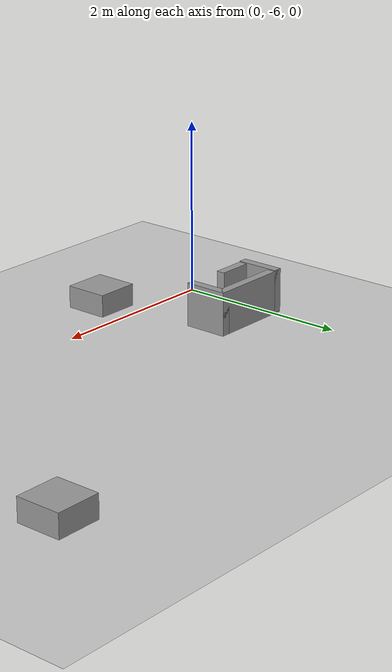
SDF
<sdf version="1.6">
 <world name="default">
  <model name="ground_plane">
   <static>1</static>
   <link name="link">
    <collision name="collision">
     <geometry><plane><normal>0 0 1</normal><size>20 20</size></plane></geometry>
     <surface>
      <contact><collide_bitmask>65535</collide_bitmask></contact>
      <friction><ode><mu>100</mu><mu2>50</mu2></ode></friction>
     </surface>
    </collision>
    <visual name="visual">
     <cast_shadows>0</cast_shadows>
     <geometry><plane><normal>0 0 1</normal><size>20 20</size></plane></geometry>
     <material>
      <script><uri>file://media/materials/scripts/gazebo.material</uri><name>Gazebo/Grey</name></script>
     </material>
    </visual>
   </link>
  </model>
  <model name="box_d=50">
   <link name="link_2">
    <inertial>
     <mass>1</mass>
     <inertia>
      <ixx>0.166667</ixx>
      <ixy>0</ixy>
      <ixz>0</ixz>
      <iyy>0.166667</iyy>
      <iyz>0</iyz>
      <izz>0.166667</izz>
     </inertia>
    </inertial>
    <pose>1.05 -6.45 0 0 -0 0</pose>
    <visual name="visual">
     <geometry><box><size>0.5 0.5 0.5</size></box></geometry>
     <material>
      <lighting>1</lighting>
      <script><uri>file://media/materials/scripts/gazebo.material</uri><name>Gazebo/Grey</name></script>
      <shader type="vertex"><normal_map>__default__</normal_map></shader>
      <ambient>0.3 0.3 0.3 1</ambient>
      <diffuse>0.7 0.7 0.7 1</diffuse>
      <specular>0.01 0.01 0.01 1</specular>
      <emissive>0 0 0 1</emissive>
     </material>
    </visual>
    <collision name="collision">
     <geometry><box><size>0.5 0.5 0.5</size></box></geometry>
     <surface>
      <friction>
       <ode><mu>1</mu><mu2>1</mu2><fdir1>0 0 0</fdir1><slip1>0</slip1><slip2>0</slip2></ode>
       <torsional>
        <coefficient>1</coefficient>
        <patch_radius>0</patch_radius>
        <surface_radius>0</surface_radius>
        <use_patch_radius>1</use_patch_radius>
        <ode><slip>0</slip></ode>
       </torsional>
      </friction>
      <bounce><restitution_coefficient>0</restitution_coefficient><threshold>1e+06</threshold></bounce>
      <contact>
       <collide_without_contact>0</collide_without_contact>
       <collide_without_contact_bitmask>1</collide_without_contact_bitmask>
       <collide_bitmask>1</collide_bitmask>
       <ode>
        <soft_cfm>0</soft_cfm>
        <soft_erp>0.2</soft_erp>
        <kp>1e+13</kp>
        <kd>1</kd>
        <max_vel>0.01</max_vel>
        <min_depth>0</min_depth>
       </ode>
       <bullet>
        <split_impulse>1</split_impulse>
        <split_impulse_penetration_threshold>-0.01</split_impulse_penetration_threshold>
        <soft_cfm>0</soft_cfm>
        <soft_erp>0.2</soft_erp>
        <kp>1e+13</kp>
        <kd>1</kd>
       </bullet>
      </contact>
     </surface>
    </collision>
   </link>
   <static>0</static>
  </model>
  <model name="box_d=50">
   <link name="link_2">
    <inertial>
     <mass>1</mass>
     <inertia>
      <ixx>0.166667</ixx>
      <ixy>0</ixy>
      <ixz>0</ixz>
      <iyy>0.166667</iyy>
      <iyz>0</iyz>
      <izz>0.166667</izz>
     </inertia>
    </inertial>
    <pose>5.15 -3.15 0 0 -0 0</pose>
    <visual name="visual">
     <geometry><box><size>0.5 0.5 0.5</size></box></geometry>
     <material>
      <lighting>1</lighting>
      <script><uri>file://media/materials/scripts/gazebo.material</uri><name>Gazebo/Grey</name></script>
      <shader type="vertex"><normal_map>__default__</normal_map></shader>
      <ambient>0.3 0.3 0.3 1</ambient>
      <diffuse>0.7 0.7 0.7 1</diffuse>
      <specular>0.01 0.01 0.01 1</specular>
      <emissive>0 0 0 1</emissive>
     </material>
    </visual>
    <collision name="collision">
     <geometry><box><size>0.5 0.5 0.5</size></box></geometry>
     <surface>
      <friction>
       <ode><mu>1</mu><mu2>1</mu2><fdir1>0 0 0</fdir1><slip1>0</slip1><slip2>0</slip2></ode>
       <torsional>
        <coefficient>1</coefficient>
        <patch_radius>0</patch_radius>
        <surface_radius>0</surface_radius>
        <use_patch_radius>1</use_patch_radius>
        <ode><slip>0</slip></ode>
       </torsional>
      </friction>
      <bounce><restitution_coefficient>0</restitution_coefficient><threshold>1e+06</threshold></bounce>
      <contact>
       <collide_without_contact>0</collide_without_contact>
       <collide_without_contact_bitmask>1</collide_without_contact_bitmask>
       <collide_bitmask>1</collide_bitmask>
       <ode>
        <soft_cfm>0</soft_cfm>
        <soft_erp>0.2</soft_erp>
        <kp>1e+13</kp>
        <kd>1</kd>
        <max_vel>0.01</max_vel>
        <min_depth>0</min_depth>
       </ode>
       <bullet>
        <split_impulse>1</split_impulse>
        <split_impulse_penetration_threshold>-0.01</split_impulse_penetration_threshold>
        <soft_cfm>0</soft_cfm>
        <soft_erp>0.2</soft_erp>
        <kp>1e+13</kp>
        <kd>1</kd>
       </bullet>
      </contact>
     </surface>
    </collision>
   </link>
   <static>0</static>
  </model>
  <model name="shape0">
   <pose>0.4 -5.05 0 0 -0 0</pose>
   <link name="Wall_0">
    <pose>0 0.2 0 0 -0 0</pose>
    <inertial>
     <mass>1</mass>
     <inertia><ixx>1</ixx><ixy>0</ixy><ixz>0</ixz><iyy>1</iyy><iyz>0</iyz><izz>1</izz></inertia>
    </inertial>
    <visual name="Wall_0_Visual">
     <pose>0 0 0.25 0 -0 0</pose>
     <geometry><box><size>1 0.1 0.5</size></box></geometry>
     <material>
      <script><uri>file://media/materials/scripts/gazebo.material</uri><name>Gazebo/Grey</name></script>
      <ambient>1 1 1 1</ambient>
      <shader type="vertex"><normal_map>__default__</normal_map></shader>
      <diffuse>0.7 0.7 0.7 1</diffuse>
      <specular>0.01 0.01 0.01 1</specular>
      <emissive>0 0 0 1</emissive>
     </material>
     <meta><layer>0</layer></meta>
    </visual>
    <collision name="Wall_0_Collision">
     <pose>0 0 0.25 0 -0 0</pose>
     <geometry><box><size>1 0.1 0.5</size></box></geometry>
     <surface>
      <friction>
       <ode><mu>1</mu><mu2>1</mu2><fdir1>0 0 0</fdir1><slip1>0</slip1><slip2>0</slip2></ode>
       <torsional>
        <coefficient>1</coefficient>
        <patch_radius>0</patch_radius>
        <surface_radius>0</surface_radius>
        <use_patch_radius>1</use_patch_radius>
        <ode><slip>0</slip></ode>
       </torsional>
      </friction>
      <bounce><restitution_coefficient>0</restitution_coefficient><threshold>1e+06</threshold></bounce>
      <contact>
       <collide_without_contact>0</collide_without_contact>
       <collide_without_contact_bitmask>1</collide_without_contact_bitmask>
       <collide_bitmask>1</collide_bitmask>
       <ode>
        <soft_cfm>0</soft_cfm>
        <soft_erp>0.2</soft_erp>
        <kp>1e+13</kp>
        <kd>1</kd>
        <max_vel>0.01</max_vel>
        <min_depth>0</min_depth>
       </ode>
       <bullet>
        <split_impulse>1</split_impulse>
        <split_impulse_penetration_threshold>-0.01</split_impulse_penetration_threshold>
        <soft_cfm>0</soft_cfm>
        <soft_erp>0.2</soft_erp>
        <kp>1e+13</kp>
        <kd>1</kd>
       </bullet>
      </contact>
     </surface>
    </collision>
   </link>
   <link name="Wall_2">
    <pose>-0.45 0 0.01 0 0 -1.5708</pose>
    <inertial>
     <mass>1</mass>
     <inertia><ixx>1</ixx><ixy>0</ixy><ixz>0</ixz><iyy>1</iyy><iyz>0</iyz><izz>1</izz></inertia>
    </inertial>
    <visual name="Wall_2_Visual">
     <pose>0 0 0.25 0 -0 0</pose>
     <geometry><box><size>0.5 0.1 0.5</size></box></geometry>
     <material>
      <script><uri>file://media/materials/scripts/gazebo.material</uri><name>Gazebo/Grey</name></script>
      <ambient>1 1 1 1</ambient>
      <shader type="vertex"><normal_map>__default__</normal_map></shader>
      <diffuse>0.7 0.7 0.7 1</diffuse>
      <specular>0.01 0.01 0.01 1</specular>
      <emissive>0 0 0 1</emissive>
     </material>
     <meta><layer>0</layer></meta>
    </visual>
    <collision name="Wall_2_Collision">
     <pose>0 0 0.25 0 -0 0</pose>
     <geometry><box><size>0.5 0.1 0.5</size></box></geometry>
     <surface>
      <friction>
       <ode><mu>1</mu><mu2>1</mu2><fdir1>0 0 0</fdir1><slip1>0</slip1><slip2>0</slip2></ode>
       <torsional>
        <coefficient>1</coefficient>
        <patch_radius>0</patch_radius>
        <surface_radius>0</surface_radius>
        <use_patch_radius>1</use_patch_radius>
        <ode><slip>0</slip></ode>
       </torsional>
      </friction>
      <bounce><restitution_coefficient>0</restitution_coefficient><threshold>1e+06</threshold></bounce>
      <contact>
       <collide_without_contact>0</collide_without_contact>
       <collide_without_contact_bitmask>1</collide_without_contact_bitmask>
       <collide_bitmask>1</collide_bitmask>
       <ode>
        <soft_cfm>0</soft_cfm>
        <soft_erp>0.2</soft_erp>
        <kp>1e+13</kp>
        <kd>1</kd>
        <max_vel>0.01</max_vel>
        <min_depth>0</min_depth>
       </ode>
       <bullet>
        <split_impulse>1</split_impulse>
        <split_impulse_penetration_threshold>-0.01</split_impulse_penetration_threshold>
        <soft_cfm>0</soft_cfm>
        <soft_erp>0.2</soft_erp>
        <kp>1e+13</kp>
        <kd>1</kd>
       </bullet>
      </contact>
     </surface>
    </collision>
   </link>
   <link name="Wall_4">
    <pose>0.45 0 0 0 0 -1.5708</pose>
    <inertial>
     <mass>1</mass>
     <inertia><ixx>1</ixx><ixy>0</ixy><ixz>0</ixz><iyy>1</iyy><iyz>0</iyz><izz>1</izz></inertia>
    </inertial>
    <visual name="Wall_4_Visual">
     <pose>0 0 0.25 0 -0 0</pose>
     <geometry><box><size>0.5 0.1 0.5</size></box></geometry>
     <material>
      <script><uri>file://media/materials/scripts/gazebo.material</uri><name>Gazebo/Grey</name></script>
      <ambient>1 1 1 1</ambient>
      <shader type="vertex"><normal_map>__default__</normal_map></shader>
      <diffuse>0.7 0.7 0.7 1</diffuse>
      <specular>0.01 0.01 0.01 1</specular>
      <emissive>0 0 0 1</emissive>
     </material>
     <meta><layer>0</layer></meta>
    </visual>
    <collision name="Wall_4_Collision">
     <pose>0 0 0.25 0 -0 0</pose>
     <geometry><box><size>0.5 0.1 0.5</size></box></geometry>
     <surface>
      <friction>
       <ode><mu>1</mu><mu2>1</mu2><fdir1>0 0 0</fdir1><slip1>0</slip1><slip2>0</slip2></ode>
       <torsional>
        <coefficient>1</coefficient>
        <patch_radius>0</patch_radius>
        <surface_radius>0</surface_radius>
        <use_patch_radius>1</use_patch_radius>
        <ode><slip>0</slip></ode>
       </torsional>
      </friction>
      <bounce><restitution_coefficient>0</restitution_coefficient><threshold>1e+06</threshold></bounce>
      <contact>
       <collide_without_contact>0</collide_without_contact>
       <collide_without_contact_bitmask>1</collide_without_contact_bitmask>
       <collide_bitmask>1</collide_bitmask>
       <ode>
        <soft_cfm>0</soft_cfm>
        <soft_erp>0.2</soft_erp>
        <kp>1e+13</kp>
        <kd>1</kd>
        <max_vel>0.01</max_vel>
        <min_depth>0</min_depth>
       </ode>
       <bullet>
        <split_impulse>1</split_impulse>
        <split_impulse_penetration_threshold>-0.01</split_impulse_penetration_threshold>
        <soft_cfm>0</soft_cfm>
        <soft_erp>0.2</soft_erp>
        <kp>1e+13</kp>
        <kd>1</kd>
       </bullet>
      </contact>
     </surface>
    </collision>
   </link>
   <link name="Wall_7">
    <pose>-0.25 -0.2 0 0 -0 0</pose>
    <inertial>
     <mass>1</mass>
     <inertia><ixx>1</ixx><ixy>0</ixy><ixz>0</ixz><iyy>1</iyy><iyz>0</iyz><izz>1</izz></inertia>
    </inertial>
    <visual name="Wall_7_Visual">
     <pose>0 0 0.25 0 -0 0</pose>
     <geometry><box><size>0.5 0.1 0.5</size></box></geometry>
     <material>
      <script><uri>file://media/materials/scripts/gazebo.material</uri><name>Gazebo/Grey</name></script>
      <ambient>1 1 1 1</ambient>
      <shader type="vertex"><normal_map>__default__</normal_map></shader>
      <diffuse>0.7 0.7 0.7 1</diffuse>
      <specular>0.01 0.01 0.01 1</specular>
      <emissive>0 0 0 1</emissive>
     </material>
     <meta><layer>0</layer></meta>
    </visual>
    <collision name="Wall_7_Collision">
     <pose>0 0 0.25 0 -0 0</pose>
     <geometry><box><size>0.5 0.1 0.5</size></box></geometry>
     <surface>
      <friction>
       <ode><mu>1</mu><mu2>1</mu2><fdir1>0 0 0</fdir1><slip1>0</slip1><slip2>0</slip2></ode>
       <torsional>
        <coefficient>1</coefficient>
        <patch_radius>0</patch_radius>
        <surface_radius>0</surface_radius>
        <use_patch_radius>1</use_patch_radius>
        <ode><slip>0</slip></ode>
       </torsional>
      </friction>
      <bounce><restitution_coefficient>0</restitution_coefficient><threshold>1e+06</threshold></bounce>
      <contact>
       <collide_without_contact>0</collide_without_contact>
       <collide_without_contact_bitmask>1</collide_without_contact_bitmask>
       <collide_bitmask>1</collide_bitmask>
       <ode>
        <soft_cfm>0</soft_cfm>
        <soft_erp>0.2</soft_erp>
        <kp>1e+13</kp>
        <kd>1</kd>
        <max_vel>0.01</max_vel>
        <min_depth>0</min_depth>
       </ode>
       <bullet>
        <split_impulse>1</split_impulse>
        <split_impulse_penetration_threshold>-0.01</split_impulse_penetration_threshold>
        <soft_cfm>0</soft_cfm>
        <soft_erp>0.2</soft_erp>
        <kp>1e+13</kp>
        <kd>1</kd>
       </bullet>
      </contact>
     </surface>
    </collision>
   </link>
   <static>1</static>
  </model>
 </world>
</sdf>
